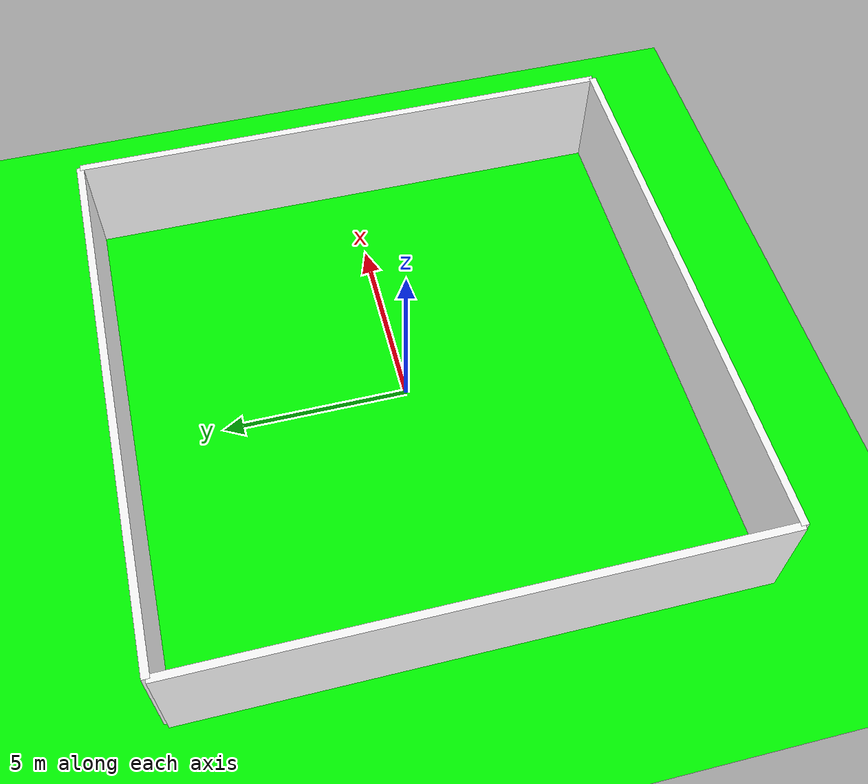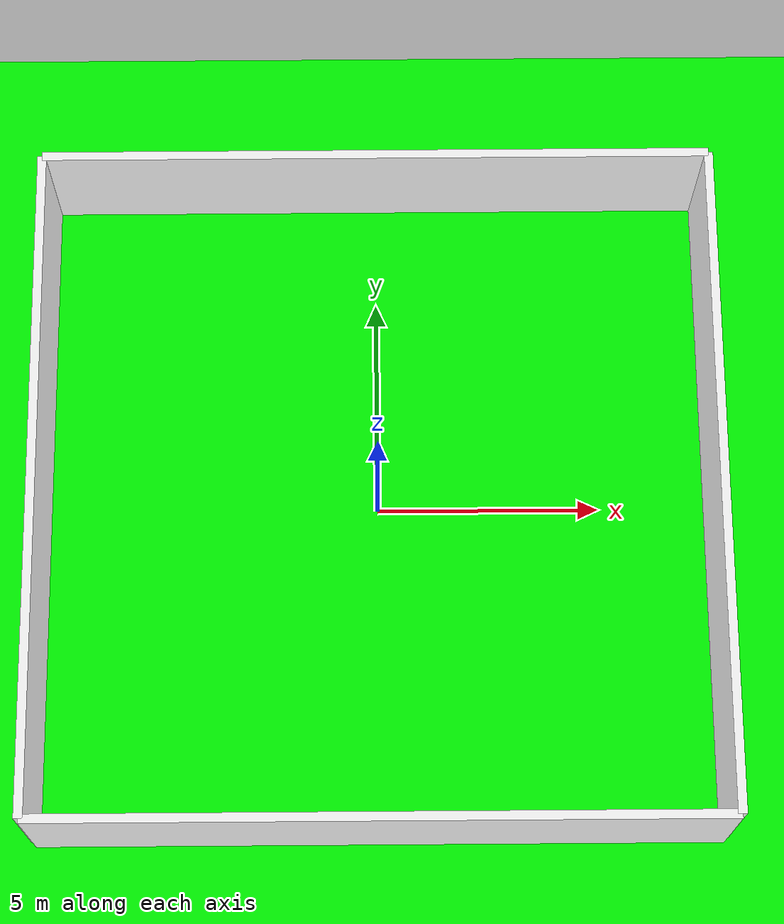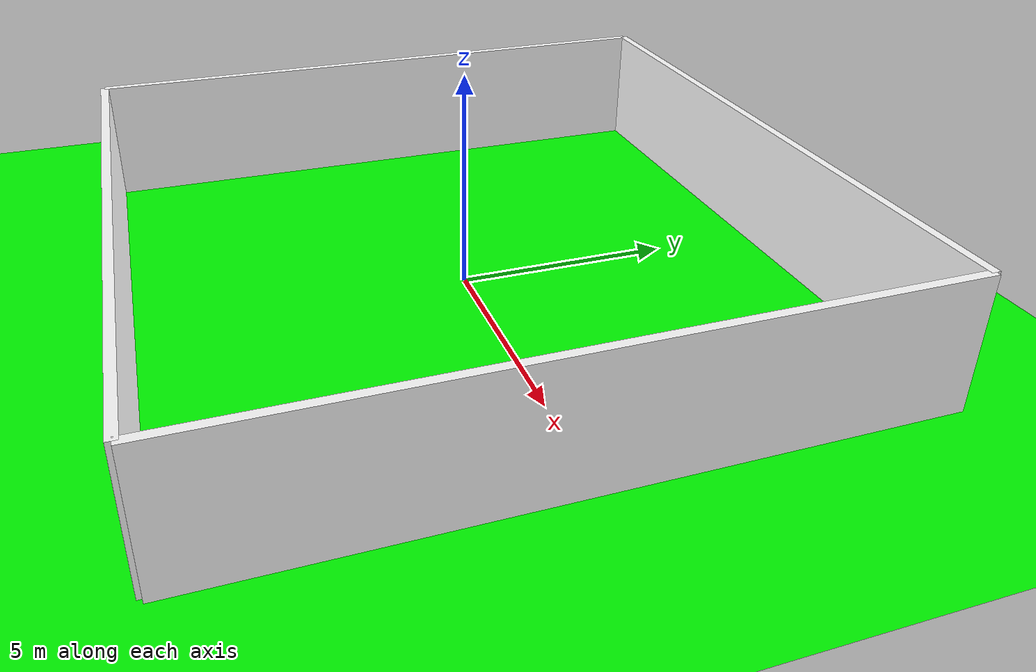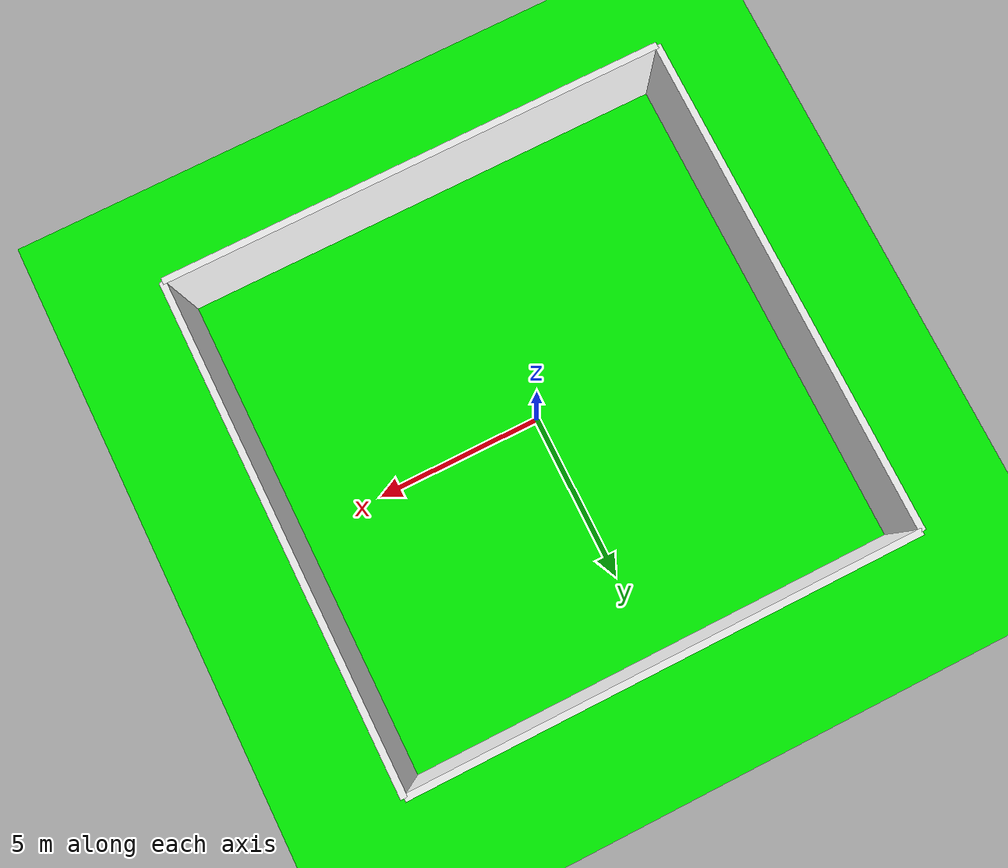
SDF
<?xml version="1.0" ?>
<sdf version="1.9">
    <world name="hangar">

    <physics type="ode">
      <max_step_size>0.003</max_step_size>
      <real_time_factor>1.0</real_time_factor>
    </physics>
    <plugin name='gz::sim::systems::Physics' filename='libgz-sim-physics-system.so'/>
    <plugin name='gz::sim::systems::UserCommands' filename='libgz-sim-user-commands-system.so'/>
    <plugin name='gz::sim::systems::SceneBroadcaster' filename='libgz-sim-scene-broadcaster-system.so'/>

      <plugin filename="libgz-sim-contact-system.so" name="gz::sim::systems::Contact"></plugin>

      <plugin filename="libgz-sim-sensors-system.so" name="gz::sim::systems::Sensors">
        <render_engine>ogre</render_engine>
      </plugin>

    <scene>
      <ambient>1 1 1 1</ambient>
      <background>0.3 0.7 0.9 1</background>
      <shadows>0</shadows>
      <grid>false</grid>
    </scene>

        <!-- Add a ground plane -->
        <model name="ground_plane">
            <static>true</static>
            <pose>0 0 0 0 0 0</pose>
            <link name="link">
                <collision name="collision">
                    <geometry>
                        <plane>
                            <normal>0 0 1</normal>
                            <size>15 15</size>
                        </plane>
                    </geometry>
                    <surface>
                        <friction>
                            <ode/>
                        </friction>
                    </surface>
                </collision>
                <visual name="visual">
                    <geometry>
                        <plane>
                            <normal>0 0 1</normal>
                            <size>15 15</size>
                        </plane>
                    </geometry>
                    <material>
                        <!-- Green color -->
                        <ambient>0 1 0 1</ambient>
                        <diffuse>0 1 0 1</diffuse>
                        <specular>0.1 0.1 0.1 1</specular>
                        <emissive>0 0 0 0</emissive>
                    </material>
                </visual>
            </link>
        </model>

        <!-- Walls -->
        <!-- Define four walls with white color around the square -->
        <!-- Adjust the positions and sizes to match the 15x15m square -->
        <!-- Example for one wall, replicate and adjust for all four -->
        <model name="wall_1">
            <static>true</static>
            <pose>0 7.5 1.5 0 0 0</pose> <!-- Adjust position accordingly -->
            <link name="link">
                <collision name="collision">
                    <geometry>
                        <box>
                            <size>15 0.2 3</size> <!-- Length, Width, Height -->
                        </box>
                    </geometry>
                </collision>
                <visual name="visual">
                    <geometry>
                        <box>
                            <size>15 0.2 3</size>
                        </box>
                    </geometry>
                    <material>
                        <ambient>1 1 1 1</ambient> <!-- White color -->
                        <diffuse>1 1 1 1</diffuse>
                        <specular>0.1 0.1 0.1 1</specular>
                        <emissive>0 0 0 0</emissive>
                    </material>
                </visual>
            </link>
        </model>

        <model name="wall_2">
            <static>true</static>
            <pose>0 -7.5 1.5 0 0 0</pose> <!-- Adjust position accordingly -->
            <link name="link">
                <collision name="collision">
                    <geometry>
                        <box>
                            <size>15 0.2 3</size> <!-- Length, Width, Height -->
                        </box>
                    </geometry>
                </collision>
                <visual name="visual">
                    <geometry>
                        <box>
                            <size>15 0.2 3</size>
                        </box>
                    </geometry>
                    <material>
                        <ambient>1 1 1 1</ambient> <!-- White color -->
                        <diffuse>1 1 1 1</diffuse>
                        <specular>0.1 0.1 0.1 1</specular>
                        <emissive>0 0 0 0</emissive>
                    </material>
                </visual>
            </link>
        </model>

        <model name="wall_3">
            <static>true</static>
            <pose>7.5 0 1.5 0 0 0</pose> <!-- Adjust position accordingly -->
            <link name="link">
                <collision name="collision">
                    <geometry>
                        <box>
                            <size>0.2 15 3</size> <!-- Length, Width, Height -->
                        </box>
                    </geometry>
                </collision>
                <visual name="visual">
                    <geometry>
                        <box>
                            <size>0.2 15 3</size>
                        </box>
                    </geometry>
                    <material>
                        <ambient>1 1 1 1</ambient> <!-- White color -->
                        <diffuse>1 1 1 1</diffuse>
                        <specular>0.1 0.1 0.1 1</specular>
                        <emissive>0 0 0 0</emissive>
                    </material>
                </visual>
            </link>
        </model>

        <model name="wall_4">
            <static>true</static>
            <pose>-7.5 0 1.5 0 0 0</pose> <!-- Adjust position accordingly -->
            <link name="link">
                <collision name="collision">
                    <geometry>
                        <box>
                            <size>0.2 15 3</size> <!-- Length, Width, Height -->
                        </box>
                    </geometry>
                </collision>
                <visual name="visual">
                    <geometry>
                        <box>
                            <size>0.2 15 3</size>
                        </box>
                    </geometry>
                    <material>
                        <ambient>1 1 1 1</ambient> <!-- White color -->
                        <diffuse>1 1 1 1</diffuse>
                        <specular>0.1 0.1 0.1 1</specular>
                        <emissive>0 0 0 0</emissive>
                    </material>
                </visual>
            </link>
        </model>

    </world>
</sdf>
